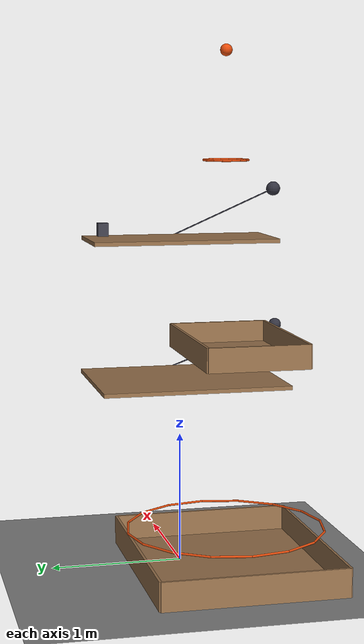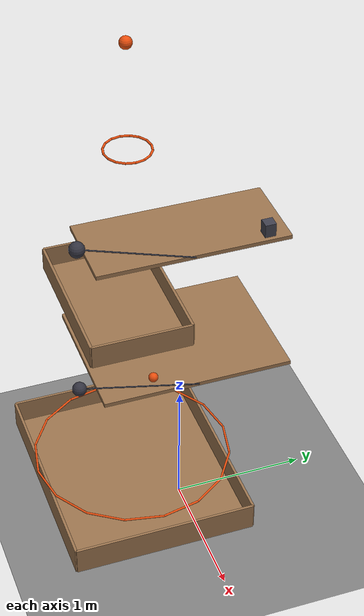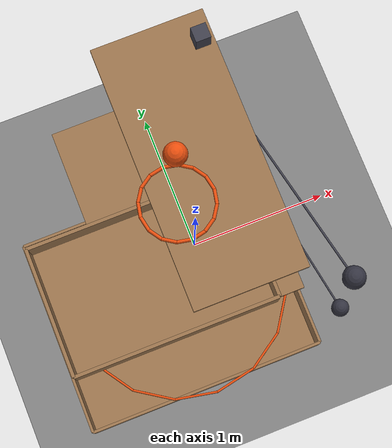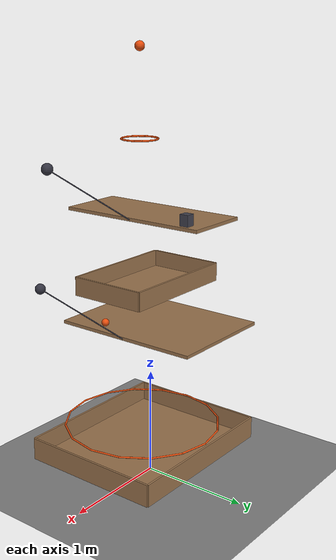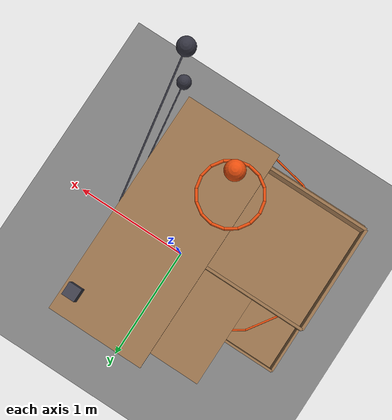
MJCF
<mujoco model="two_counterweighted_trapdoors">
  <compiler angle="radian"/>
  <option timestep="0.002"/>
  <worldbody>
    <geom name="floor" type="plane" size="6 6 0.1" friction="0.8 0.005 0.002"/>
    <body name="hoop1">
      <geom name="hoop1_00" type="capsule" size="0.008" fromto="-0.052 -0.3 3.1 -0.0647882 -0.235709 3.1" rgba="0.9 0.3 0.05 1"/>
      <geom name="hoop1_01" type="capsule" size="0.008" fromto="-0.0647882 -0.235709 3.1 -0.101206 -0.181206 3.1" rgba="0.9 0.3 0.05 1"/>
      <geom name="hoop1_02" type="capsule" size="0.008" fromto="-0.101206 -0.181206 3.1 -0.155709 -0.144788 3.1" rgba="0.9 0.3 0.05 1"/>
      <geom name="hoop1_03" type="capsule" size="0.008" fromto="-0.155709 -0.144788 3.1 -0.22 -0.132 3.1" rgba="0.9 0.3 0.05 1"/>
      <geom name="hoop1_04" type="capsule" size="0.008" fromto="-0.22 -0.132 3.1 -0.284291 -0.144788 3.1" rgba="0.9 0.3 0.05 1"/>
      <geom name="hoop1_05" type="capsule" size="0.008" fromto="-0.284291 -0.144788 3.1 -0.338794 -0.181206 3.1" rgba="0.9 0.3 0.05 1"/>
      <geom name="hoop1_06" type="capsule" size="0.008" fromto="-0.338794 -0.181206 3.1 -0.375212 -0.235709 3.1" rgba="0.9 0.3 0.05 1"/>
      <geom name="hoop1_07" type="capsule" size="0.008" fromto="-0.375212 -0.235709 3.1 -0.388 -0.3 3.1" rgba="0.9 0.3 0.05 1"/>
      <geom name="hoop1_08" type="capsule" size="0.008" fromto="-0.388 -0.3 3.1 -0.375212 -0.364291 3.1" rgba="0.9 0.3 0.05 1"/>
      <geom name="hoop1_09" type="capsule" size="0.008" fromto="-0.375212 -0.364291 3.1 -0.338794 -0.418794 3.1" rgba="0.9 0.3 0.05 1"/>
      <geom name="hoop1_10" type="capsule" size="0.008" fromto="-0.338794 -0.418794 3.1 -0.284291 -0.455212 3.1" rgba="0.9 0.3 0.05 1"/>
      <geom name="hoop1_11" type="capsule" size="0.008" fromto="-0.284291 -0.455212 3.1 -0.22 -0.468 3.1" rgba="0.9 0.3 0.05 1"/>
      <geom name="hoop1_12" type="capsule" size="0.008" fromto="-0.22 -0.468 3.1 -0.155709 -0.455212 3.1" rgba="0.9 0.3 0.05 1"/>
      <geom name="hoop1_13" type="capsule" size="0.008" fromto="-0.155709 -0.455212 3.1 -0.101206 -0.418794 3.1" rgba="0.9 0.3 0.05 1"/>
      <geom name="hoop1_14" type="capsule" size="0.008" fromto="-0.101206 -0.418794 3.1 -0.0647882 -0.364291 3.1" rgba="0.9 0.3 0.05 1"/>
      <geom name="hoop1_15" type="capsule" size="0.008" fromto="-0.0647882 -0.364291 3.1 -0.052 -0.3 3.1" rgba="0.9 0.3 0.05 1"/>
    </body>
    <body name="ball1" pos="-0.22 -0.3 3.9">
      <freejoint/>
      <geom name="ball1" type="sphere" pos="0 0 0" size="0.045" mass="0.35" condim="6" friction="0.8 0.01 0.003" solref="0.01 1" rgba="0.9 0.3 0.05 1"/>
    </body>
    <body name="flap1" pos="0.3 0 2.5">
      <joint name="flap1_hinge" type="hinge" pos="0 0 0" axis="0 1 0" limited="true" range="-1.48353 0" damping="0.025"/>
      <geom name="flap1" type="box" pos="-0.3 0 0" size="0.3 0.7 0.015" mass="0.14" friction="0.8 0.005 0.002" solref="0.01 1" rgba="0.6 0.45 0.3 1"/>
      <geom name="counterweight1" type="sphere" pos="0.105 -0.85 0.35" size="0.055" mass="0.9" solref="0.01 1" rgba="0.2 0.2 0.25 1"/>
      <geom name="counterweight1 arm" type="capsule" size="0.005" fromto="0 0 0 0.105 -0.85 0.35" mass="0.02" rgba="0.25 0.25 0.3 1"/>
    </body>
    <body name="block" pos="0.23 0.55 2.565">
      <freejoint/>
      <geom name="block" type="box" pos="0 0 0" size="0.04 0.04 0.05" mass="0.3" friction="0.8 0.005 0.002" solref="0.01 1" rgba="0.25 0.25 0.3 1"/>
    </body>
    <body name="first ball catcher">
      <geom name="first ball catcher_base" type="box" pos="-0.4 -0.35 1.66" size="0.6 0.375 0.01" friction="1 0.02 0.01" solref="0.01 1" rgba="0.6 0.45 0.3 1"/>
      <geom name="first ball catcher_near_wall" type="box" pos="-1 -0.35 1.74" size="0.01 0.375 0.09" friction="1 0.02 0.01" solref="0.01 1" rgba="0.6 0.45 0.3 1"/>
      <geom name="first ball catcher_far_wall" type="box" pos="0.2 -0.35 1.74" size="0.01 0.375 0.09" friction="1 0.02 0.01" solref="0.01 1" rgba="0.6 0.45 0.3 1"/>
      <geom name="first ball catcher_left_wall" type="box" pos="-0.4 0.025 1.74" size="0.6 0.01 0.09" friction="1 0.02 0.01" solref="0.01 1" rgba="0.6 0.45 0.3 1"/>
      <geom name="first ball catcher_right_wall" type="box" pos="-0.4 -0.725 1.74" size="0.6 0.01 0.09" friction="1 0.02 0.01" solref="0.01 1" rgba="0.6 0.45 0.3 1"/>
    </body>
    <body name="flap2" pos="0.4 0 1.45">
      <joint name="flap2_hinge" type="hinge" pos="0 0 0" axis="0 1 0" limited="true" range="-1.48353 0" damping="0.025"/>
      <geom name="flap2" type="box" pos="-0.525 0 0" size="0.525 0.7 0.015" mass="0.1" friction="0.6 0.005 0.002" solref="0.01 1" rgba="0.6 0.45 0.3 1"/>
      <geom name="counterweight2" type="sphere" pos="0.095 -0.9 0.3" size="0.05" mass="0.8" solref="0.01 1" rgba="0.2 0.2 0.25 1"/>
      <geom name="counterweight2 arm" type="capsule" size="0.005" fromto="0 0 0 0.095 -0.9 0.3" mass="0.015" rgba="0.25 0.25 0.3 1"/>
    </body>
    <body name="ball2" pos="0.28 -0.3 1.5">
      <freejoint/>
      <geom name="ball2" type="sphere" pos="0 0 0" size="0.035" mass="0.09" condim="6" friction="0.6 0.01 0.004" solref="0.01 1" rgba="0.9 0.3 0.05 1"/>
    </body>
    <body name="hoop2">
      <geom name="hoop2_00" type="capsule" size="0.008" fromto="0.508 -0.3 0.31 0.450301 -0.00992596 0.31" rgba="0.9 0.3 0.05 1"/>
      <geom name="hoop2_01" type="capsule" size="0.008" fromto="0.450301 -0.00992596 0.31 0.285987 0.235987 0.31" rgba="0.9 0.3 0.05 1"/>
      <geom name="hoop2_02" type="capsule" size="0.008" fromto="0.285987 0.235987 0.31 0.040074 0.400301 0.31" rgba="0.9 0.3 0.05 1"/>
      <geom name="hoop2_03" type="capsule" size="0.008" fromto="0.040074 0.400301 0.31 -0.25 0.458 0.31" rgba="0.9 0.3 0.05 1"/>
      <geom name="hoop2_04" type="capsule" size="0.008" fromto="-0.25 0.458 0.31 -0.540074 0.400301 0.31" rgba="0.9 0.3 0.05 1"/>
      <geom name="hoop2_05" type="capsule" size="0.008" fromto="-0.540074 0.400301 0.31 -0.785987 0.235987 0.31" rgba="0.9 0.3 0.05 1"/>
      <geom name="hoop2_06" type="capsule" size="0.008" fromto="-0.785987 0.235987 0.31 -0.950301 -0.00992596 0.31" rgba="0.9 0.3 0.05 1"/>
      <geom name="hoop2_07" type="capsule" size="0.008" fromto="-0.950301 -0.00992596 0.31 -1.008 -0.3 0.31" rgba="0.9 0.3 0.05 1"/>
      <geom name="hoop2_08" type="capsule" size="0.008" fromto="-1.008 -0.3 0.31 -0.950301 -0.590074 0.31" rgba="0.9 0.3 0.05 1"/>
      <geom name="hoop2_09" type="capsule" size="0.008" fromto="-0.950301 -0.590074 0.31 -0.785987 -0.835987 0.31" rgba="0.9 0.3 0.05 1"/>
      <geom name="hoop2_10" type="capsule" size="0.008" fromto="-0.785987 -0.835987 0.31 -0.540074 -1.0003 0.31" rgba="0.9 0.3 0.05 1"/>
      <geom name="hoop2_11" type="capsule" size="0.008" fromto="-0.540074 -1.0003 0.31 -0.25 -1.058 0.31" rgba="0.9 0.3 0.05 1"/>
      <geom name="hoop2_12" type="capsule" size="0.008" fromto="-0.25 -1.058 0.31 0.040074 -1.0003 0.31" rgba="0.9 0.3 0.05 1"/>
      <geom name="hoop2_13" type="capsule" size="0.008" fromto="0.040074 -1.0003 0.31 0.285987 -0.835987 0.31" rgba="0.9 0.3 0.05 1"/>
      <geom name="hoop2_14" type="capsule" size="0.008" fromto="0.285987 -0.835987 0.31 0.450301 -0.590074 0.31" rgba="0.9 0.3 0.05 1"/>
      <geom name="hoop2_15" type="capsule" size="0.008" fromto="0.450301 -0.590074 0.31 0.508 -0.3 0.31" rgba="0.9 0.3 0.05 1"/>
    </body>
    <body name="cup">
      <geom name="cup_base" type="box" pos="-0.3 -0.3 0.0125" size="0.85 0.7 0.0125" friction="1 0.03 0.02" solref="0.01 1" rgba="0.6 0.45 0.3 1"/>
      <geom name="cup_near_wall" type="box" pos="-1.15 -0.3 0.11" size="0.01 0.7 0.11" friction="1 0.03 0.02" solref="0.01 1" rgba="0.6 0.45 0.3 1"/>
      <geom name="cup_far_wall" type="box" pos="0.55 -0.3 0.11" size="0.01 0.7 0.11" friction="1 0.03 0.02" solref="0.01 1" rgba="0.6 0.45 0.3 1"/>
      <geom name="cup_left_wall" type="box" pos="-0.3 0.4 0.11" size="0.85 0.01 0.11" friction="1 0.03 0.02" solref="0.01 1" rgba="0.6 0.45 0.3 1"/>
      <geom name="cup_right_wall" type="box" pos="-0.3 -1 0.11" size="0.85 0.01 0.11" friction="1 0.03 0.02" solref="0.01 1" rgba="0.6 0.45 0.3 1"/>
    </body>
  </worldbody>
  <keyframe>
    <key name="start" qpos="-0.22 -0.3 3.9 1 0 0 0 0 0.23 0.55 2.565 1 0 0 0 0 0.28 -0.3 1.5 1 0 0 0" qvel="0 0 0 0 0 0 0 0 0 0 0 0 0 0 0 0 0 0 0 0"/>
  </keyframe>
</mujoco>
